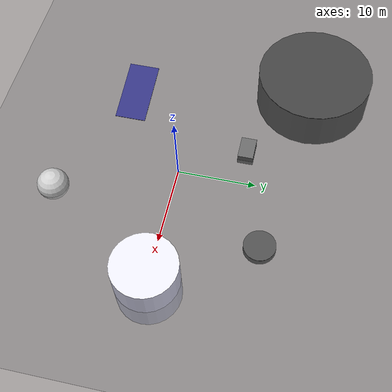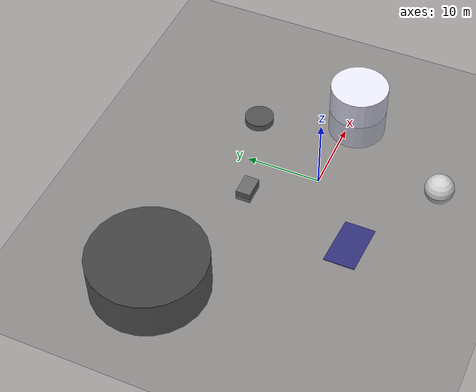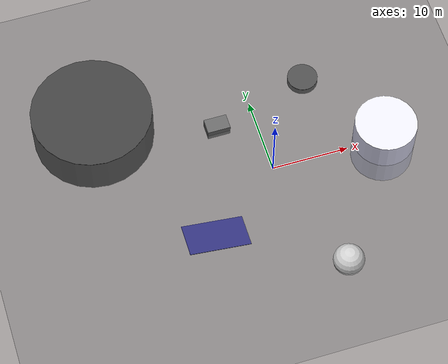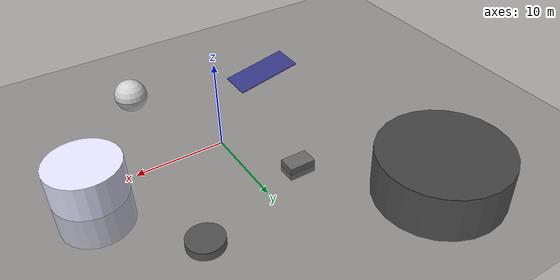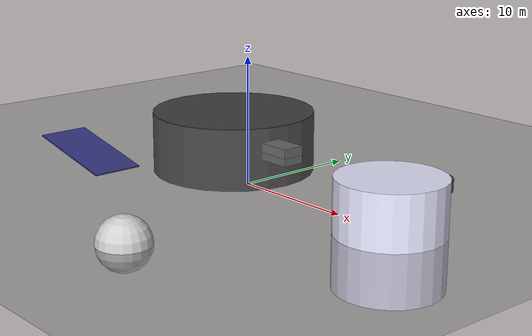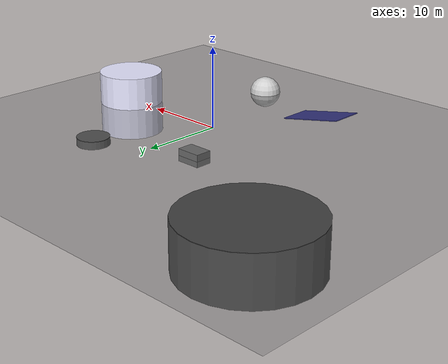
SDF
<?xml version="1.0" ?>
<sdf version="1.6">
  <world name="realistic_lunar_habitat">

    <!-- Lunar Physics with lower gravity -->
    <physics name="default_physics" default="0" type="ode">
      <gravity>0 0 -1.62</gravity> <!-- Lunar gravity = 1/6 Earth -->
      <ode>
        <solver>
          <type>quick</type>
          <iters>10</iters>
          <sor>1.3</sor>
        </solver>
        <constraints>
          <cfm>0</cfm>
          <erp>0.2</erp>
          <contact_max_correcting_vel>100</contact_max_correcting_vel>
          <contact_surface_layer>0.001</contact_surface_layer>
        </constraints>
      </ode>
      <real_time_update_rate>1000</real_time_update_rate>
      <max_step_size>0.001</max_step_size>
    </physics>

    <!-- Lunar lighting - harsh shadows -->
    <light name="sun" type="directional">
      <cast_shadows>1</cast_shadows>
      <pose>-10 5 20 0 0 0</pose>
      <diffuse>0.9 0.9 0.8 1</diffuse>
      <specular>0.8 0.8 0.7 1</specular>
      <attenuation>
        <range>1000</range>
        <constant>0.9</constant>
        <linear>0.01</linear>
        <quadratic>0.001</quadratic>
      </attenuation>
      <direction>0.5 -0.2 -0.9</direction>
    </light>

    <!-- Lunar surface with regolith texture -->
    <model name="lunar_ground">
      <static>true</static>
      <link name="link">
        <collision name="collision">
          <geometry>
            <heightmap>
              <size>200 200 10</size>
              <texture>
                <diffuse>file://media/materials/textures/moon_surface.png</diffuse>
                <normal>file://media/materials/textures/flat_normal.png</normal>
                <size>1</size>
              </texture>
              <pos>0 0 0</pos>
            </heightmap>
          </geometry>
          <surface>
            <contact>
              <collide_bitmask>65535</collide_bitmask>
            </contact>
            <friction>
              <ode>
                <mu>0.1</mu>  <!-- Low friction lunar dust -->
                <mu2>0.1</mu2>
              </ode>
            </friction>
          </surface>
        </collision>
        <visual name="visual">
          <cast_shadows>false</cast_shadows>
          <geometry>
            <plane>
              <normal>0 0 1</normal>
              <size>200 200</size>
            </plane>
          </geometry>
          <material>
            <ambient>0.3 0.3 0.3 1</ambient>
            <diffuse>0.4 0.4 0.4 1</diffuse>
            <specular>0.1 0.1 0.1 1</specular>
          </material>
        </visual>
      </link>
    </model>

    <!-- Lunar Habitat Module -->
    <model name="lunar_habitat_main">
      <static>true</static>
      <pose>15 0 0 0 0 0</pose>
      <link name="habitat_link">
        <visual name="visual">
          <geometry>
            <cylinder>
              <radius>4</radius>
              <length>8</length>
            </cylinder>
          </geometry>
          <material>
            <ambient>0.8 0.8 0.9 1</ambient>
            <diffuse>0.9 0.9 1.0 1</diffuse>
            <specular>0.4 0.4 0.4 1</specular>
          </material>
        </visual>
        <collision name="collision">
          <geometry>
            <cylinder>
              <radius>4</radius>
              <length>8</length>
            </cylinder>
          </geometry>
        </collision>
      </link>
    </model>

    <!-- Solar Panel Array -->
    <model name="solar_panels">
      <static>true</static>
      <pose>-10 -8 2 0 0.2 0</pose>
      <link name="panel_link">
        <visual name="visual">
          <geometry>
            <box>
              <size>8 4 0.1</size>
            </box>
          </geometry>
          <material>
            <ambient>0.1 0.1 0.3 1</ambient>
            <diffuse>0.2 0.2 0.5 1</diffuse>
            <specular>0.8 0.8 0.8 1</specular>
          </material>
        </visual>
        <collision name="collision">
          <geometry>
            <box>
              <size>8 4 0.1</size>
            </box>
          </geometry>
        </collision>
      </link>
    </model>

    <!-- Large Lunar Crater -->
    <model name="main_crater">
      <static>true</static>
      <pose>-20 15 -3 0 0 0</pose>
      <link name="crater_link">
        <visual name="visual">
          <geometry>
            <cylinder>
              <radius>8</radius>
              <length>6</length>
            </cylinder>
          </geometry>
          <material>
            <ambient>0.2 0.2 0.2 1</ambient>
            <diffuse>0.25 0.25 0.25 1</diffuse>
            <specular>0.1 0.1 0.1 1</specular>
          </material>
        </visual>
        <collision name="collision">
          <geometry>
            <cylinder>
              <radius>8</radius>
              <length>6</length>
            </cylinder>
          </geometry>
        </collision>
      </link>
    </model>

    <!-- Small Craters scattered around -->
    <model name="small_crater_1">
      <static>true</static>
      <pose>8 12 -0.5 0 0 0</pose>
      <link name="link">
        <visual name="visual">
          <geometry>
            <cylinder>
              <radius>2</radius>
              <length>1</length>
            </cylinder>
          </geometry>
          <material>
            <ambient>0.25 0.25 0.25 1</ambient>
            <diffuse>0.3 0.3 0.3 1</diffuse>
            <specular>0.1 0.1 0.1 1</specular>
          </material>
        </visual>
        <collision name="collision">
          <geometry>
            <cylinder>
              <radius>2</radius>
              <length>1</length>
            </cylinder>
          </geometry>
        </collision>
      </link>
    </model>

    <!-- Communication Array -->
    <model name="comm_array">
      <static>true</static>
      <pose>5 -15 0 0 0 0</pose>
      <link name="dish_link">
        <visual name="visual">
          <geometry>
            <sphere>
              <radius>2</radius>
            </sphere>
          </geometry>
          <material>
            <ambient>0.7 0.7 0.7 1</ambient>
            <diffuse>0.8 0.8 0.8 1</diffuse>
            <specular>0.9 0.9 0.9 1</specular>
          </material>
        </visual>
        <collision name="collision">
          <geometry>
            <sphere>
              <radius>2</radius>
            </sphere>
          </geometry>
        </collision>
      </link>
    </model>

    <!-- Rocky outcrops -->
    <model name="lunar_rocks_1">
      <static>true</static>
      <pose>-5 8 0 0 0 0</pose>
      <link name="rock_link">
        <visual name="visual">
          <geometry>
            <box>
              <size>3 2 1.5</size>
            </box>
          </geometry>
          <material>
            <ambient>0.35 0.35 0.35 1</ambient>
            <diffuse>0.4 0.4 0.4 1</diffuse>
            <specular>0.2 0.2 0.2 1</specular>
          </material>
        </visual>
        <collision name="collision">
          <geometry>
            <box>
              <size>3 2 1.5</size>
            </box>
          </geometry>
        </collision>
      </link>
    </model>

    <!-- ROS Plugins -->
    <plugin name="gazebo_ros_state" filename="libgazebo_ros_state.so">
      <ros>
        <namespace>/gazebo</namespace>
      </ros>
      <update_rate>1.0</update_rate>
    </plugin>

    <plugin name="gazebo_ros_factory" filename="libgazebo_ros_factory.so" />

  </world>
</sdf>
